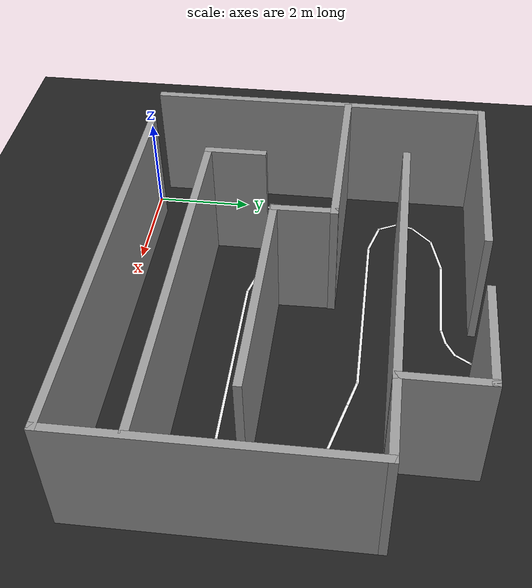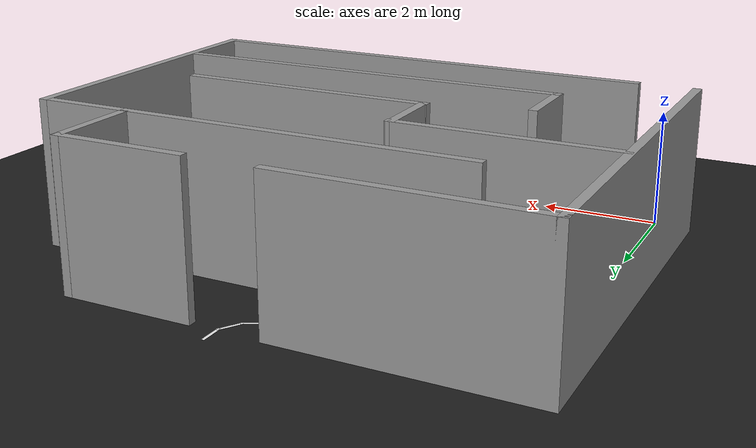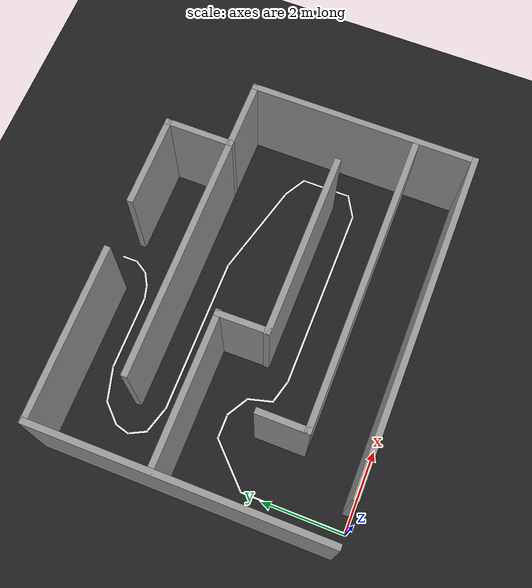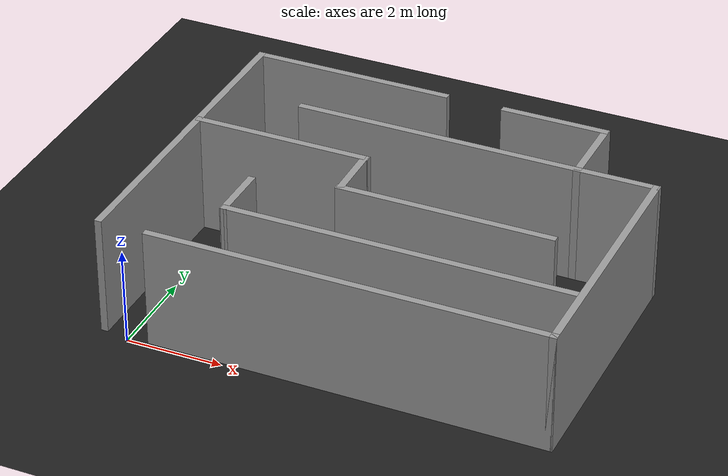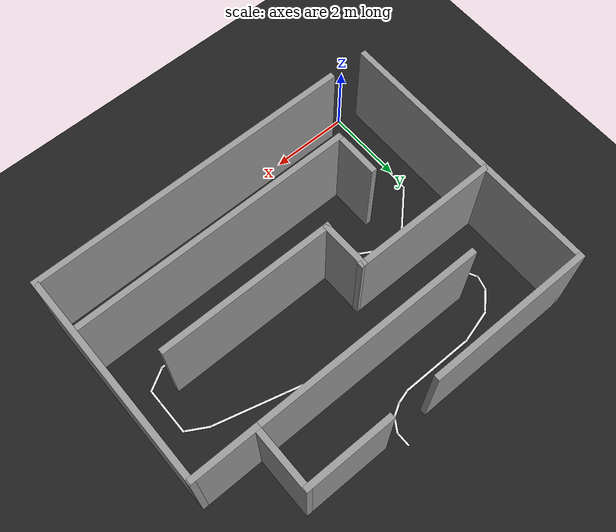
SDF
<sdf version="1.7">
 <world name="default">
  <light name="sun" type="directional">
   <pose>0 0 10 0 -0 0</pose>
   <diffuse>0.8 0.8 0.8 1</diffuse>
   <specular>0.2 0.2 0.2 1</specular>
   <attenuation>
    <range>1000</range>
    <constant>0.9</constant>
    <linear>0.01</linear>
    <quadratic>0.001</quadratic>
   </attenuation>
   <direction>-0.5 0.1 -0.9</direction>
   <spot><inner_angle>0</inner_angle><outer_angle>0</outer_angle><falloff>0</falloff></spot>
  </light>
  <model name="ground_plane">
   <static>1</static>
   <link name="link">
    <collision name="collision">
     <geometry><plane><normal>0 0 1</normal><size>100 100</size></plane></geometry>
     <surface>
      <contact><collide_bitmask>65535</collide_bitmask></contact>
      <friction><ode><mu>100</mu><mu2>50</mu2></ode></friction>
     </surface>
    </collision>
    <visual name="visual">
     <cast_shadows>0</cast_shadows>
     <geometry><plane><normal>0 0 1</normal><size>100 100</size></plane></geometry>
     <material>
      <script><uri>file://media/materials/scripts/gazebo.material</uri><name>Gazebo/Black</name></script>
     </material>
    </visual>
   </link>
  </model>
  <gravity>0 0 -9.8</gravity>
  <magnetic_field>6e-06 2.3e-05 -4.2e-05</magnetic_field>
  <atmosphere type="adiabatic"/>
  <physics type="ode">
   <max_step_size>0.001</max_step_size>
   <real_time_factor>1</real_time_factor>
   <real_time_update_rate>1000</real_time_update_rate>
  </physics>
  <scene><ambient>0.4 0.4 0.4 1</ambient><background>0 0 0 1</background><shadows>1</shadows></scene>
  <spherical_coordinates>
   <surface_model>EARTH_WGS84</surface_model>
   <latitude_deg>0</latitude_deg>
   <longitude_deg>0</longitude_deg>
   <elevation>0</elevation>
   <heading_deg>0</heading_deg>
  </spherical_coordinates>
  <model name="maze">
   <pose>4.01868 3.58658 0 0 -0 0</pose>
   <link name="Wall_1">
    <collision name="Wall_1_Collision">
     <geometry><box><size>8.25 0.15 2.5</size></box></geometry>
     <pose>0 0 1.25 0 -0 0</pose>
    </collision>
    <visual name="Wall_1_Visual">
     <pose>0 0 1.25 0 -0 0</pose>
     <geometry><box><size>8.25 0.15 2.5</size></box></geometry>
     <material>
      <script><uri>file://media/materials/scripts/gazebo.material</uri><name>Gazebo/Grey</name></script>
      <ambient>1 1 1 1</ambient>
     </material>
     <meta><layer>0</layer></meta>
    </visual>
    <pose>0.515408 -3.4419 0 0 -0 0</pose>
   </link>
   <link name="Wall_2">
    <collision name="Wall_2_Collision">
     <geometry><box><size>5.5 0.15 2.5</size></box></geometry>
     <pose>0 0 1.25 0 -0 0</pose>
    </collision>
    <visual name="Wall_2_Visual">
     <pose>0 0 1.25 0 -0 0</pose>
     <geometry><box><size>5.5 0.15 2.5</size></box></geometry>
     <material>
      <script><uri>file://media/materials/scripts/gazebo.material</uri><name>Gazebo/Grey</name></script>
      <ambient>1 1 1 1</ambient>
     </material>
     <meta><layer>0</layer></meta>
    </visual>
    <pose>4.56541 -0.766899 0 0 -0 1.5708</pose>
   </link>
   <link name="Wall_3">
    <collision name="Wall_3_Collision">
     <geometry><box><size>1.75 0.15 2.5</size></box></geometry>
     <pose>0 0 1.25 0 -0 0</pose>
    </collision>
    <visual name="Wall_3_Visual">
     <pose>0 0 1.25 0 -0 0</pose>
     <geometry><box><size>1.75 0.15 2.5</size></box></geometry>
     <material>
      <script><uri>file://media/materials/scripts/gazebo.material</uri><name>Gazebo/Grey</name></script>
      <ambient>1 1 1 1</ambient>
     </material>
     <meta><layer>0</layer></meta>
    </visual>
    <pose>3.76541 1.9081 0 0 -0 3.14159</pose>
   </link>
   <link name="Wall_4">
    <collision name="Wall_4_Collision">
     <geometry><box><size>1.6825 0.15 2.5</size></box></geometry>
     <pose>0 0 1.25 0 -0 0</pose>
    </collision>
    <visual name="Wall_4_Visual">
     <pose>0 0 1.25 0 -0 0</pose>
     <geometry><box><size>1.6825 0.15 2.5</size></box></geometry>
     <material>
      <script><uri>file://media/materials/scripts/gazebo.material</uri><name>Gazebo/Grey</name></script>
      <ambient>1 1 1 1</ambient>
     </material>
     <meta><layer>0</layer></meta>
    </visual>
    <pose>2.96541 2.6743 0 0 -0 1.5708</pose>
   </link>
   <link name="Wall_5">
    <collision name="Wall_5_Collision">
     <geometry><box><size>2.25 0.15 2.5</size></box></geometry>
     <pose>0 0 1.25 0 -0 0</pose>
    </collision>
    <visual name="Wall_5_Visual">
     <pose>0 0 1.25 0 -0 0</pose>
     <geometry><box><size>2.25 0.15 2.5</size></box></geometry>
     <material>
      <script><uri>file://media/materials/scripts/gazebo.material</uri><name>Gazebo/Grey</name></script>
      <ambient>1 1 1 1</ambient>
     </material>
     <meta><layer>0</layer></meta>
    </visual>
    <pose>1.89851 3.44051 0 0 -0 3.14159</pose>
   </link>
   <link name="Wall_6">
    <collision name="Wall_6_Collision">
     <geometry><box><size>7 0.15 2.5</size></box></geometry>
     <pose>0 0 1.25 0 -0 0</pose>
    </collision>
    <visual name="Wall_6_Visual">
     <pose>0 0 1.25 0 -0 0</pose>
     <geometry><box><size>7 0.15 2.5</size></box></geometry>
     <material>
      <script><uri>file://media/materials/scripts/gazebo.material</uri><name>Gazebo/Grey</name></script>
      <ambient>1 1 1 1</ambient>
     </material>
     <meta><layer>0</layer></meta>
    </visual>
    <pose>-4.56541 0.016899 0 0 -0 1.5708</pose>
   </link>
   <link name="Wall_7">
    <collision name="Wall_7_Collision">
     <geometry><box><size>4.25 0.15 2.5</size></box></geometry>
     <pose>0 0 1.25 0 -0 0</pose>
    </collision>
    <visual name="Wall_7_Visual">
     <pose>0 0 1.25 0 -0 0</pose>
     <geometry><box><size>4.25 0.15 2.5</size></box></geometry>
     <material>
      <script><uri>file://media/materials/scripts/gazebo.material</uri><name>Gazebo/Grey</name></script>
      <ambient>1 1 1 1</ambient>
     </material>
     <meta><layer>0</layer></meta>
    </visual>
    <pose>-2.51541 3.4419 0 0 -0 0</pose>
   </link>
   <link name="Wall_8">
    <collision name="Wall_8_Collision">
     <geometry><box><size>6 0.15 2.5</size></box></geometry>
     <pose>0 0 1.25 0 -0 0</pose>
    </collision>
    <visual name="Wall_8_Visual">
     <pose>0 0 1.25 0 -0 0</pose>
     <geometry><box><size>6 0.15 2.5</size></box></geometry>
     <material>
      <script><uri>file://media/materials/scripts/gazebo.material</uri><name>Gazebo/Grey</name></script>
      <ambient>1 1 1 1</ambient>
     </material>
     <meta><layer>0</layer></meta>
    </visual>
    <pose>0.040408 1.9081 0 0 -0 3.14159</pose>
   </link>
   <link name="Wall_9">
    <collision name="Wall_9_Collision">
     <geometry><box><size>3.75 0.15 2.5</size></box></geometry>
     <pose>0 0 1.25 0 -0 0</pose>
    </collision>
    <visual name="Wall_9_Visual">
     <pose>0 0 1.25 0 -0 0</pose>
     <geometry><box><size>3.75 0.15 2.5</size></box></geometry>
     <material>
      <script><uri>file://media/materials/scripts/gazebo.material</uri><name>Gazebo/Grey</name></script>
      <ambient>1 1 1 1</ambient>
     </material>
     <meta><layer>0</layer></meta>
    </visual>
    <pose>-2.73161 0.613768 0 0 -0 0</pose>
   </link>
   <link name="Wall_10">
    <collision name="Wall_10_Collision">
     <geometry><box><size>1.28044 0.15 2.5</size></box></geometry>
     <pose>0 0 1.25 0 -0 0</pose>
    </collision>
    <visual name="Wall_10_Visual">
     <pose>0 0 1.25 0 -0 0</pose>
     <geometry><box><size>1.28044 0.15 2.5</size></box></geometry>
     <material>
      <script><uri>file://media/materials/scripts/gazebo.material</uri><name>Gazebo/Grey</name></script>
      <ambient>1 1 1 1</ambient>
     </material>
     <meta><layer>0</layer></meta>
    </visual>
    <pose>-0.94006 0.048609 0 0 -0 -1.55585</pose>
   </link>
   <link name="Wall_11">
    <collision name="Wall_11_Collision">
     <geometry><box><size>4.5 0.15 2.5</size></box></geometry>
     <pose>0 0 1.25 0 -0 0</pose>
    </collision>
    <visual name="Wall_11_Visual">
     <pose>0 0 1.25 0 -0 0</pose>
     <geometry><box><size>4.5 0.15 2.5</size></box></geometry>
     <material>
      <script><uri>file://media/materials/scripts/gazebo.material</uri><name>Gazebo/Grey</name></script>
      <ambient>1 1 1 1</ambient>
     </material>
     <meta><layer>0</layer></meta>
    </visual>
    <pose>1.22649 -0.533449 0 0 -0 0</pose>
   </link>
   <link name="Wall_12">
    <collision name="Wall_12_Collision">
     <geometry><box><size>7.23312 0.15 2.5</size></box></geometry>
     <pose>0 0 1.25 0 -0 0</pose>
    </collision>
    <visual name="Wall_12_Visual">
     <pose>0 0 1.25 0 -0 0</pose>
     <geometry><box><size>7.23312 0.15 2.5</size></box></geometry>
     <material>
      <script><uri>file://media/materials/scripts/gazebo.material</uri><name>Gazebo/Grey</name></script>
      <ambient>1 1 1 1</ambient>
     </material>
     <meta><layer>0</layer></meta>
    </visual>
    <pose>0.933799 -2.06466 0 0 -0 -3.13921</pose>
   </link>
   <link name="Wall_13">
    <collision name="Wall_13_Collision">
     <geometry><box><size>1.25 0.15 2.5</size></box></geometry>
     <pose>0 0 1.25 0 -0 0</pose>
    </collision>
    <visual name="Wall_13_Visual">
     <pose>0 0 1.25 0 -0 0</pose>
     <geometry><box><size>1.25 0.15 2.5</size></box></geometry>
     <material>
      <script><uri>file://media/materials/scripts/gazebo.material</uri><name>Gazebo/Grey</name></script>
      <ambient>1 1 1 1</ambient>
     </material>
     <meta><layer>0</layer></meta>
    </visual>
    <pose>-2.62465 -1.52311 0 0 -0 1.5708</pose>
   </link>
   <static>1</static>
  </model>
  <model name="path">
   <pose>4.00109 3.7121 0 0 -0 0</pose>
   <link name="Line_11">
    <collision name="Line_11_Collision">
     <geometry><plane><normal>0 0 1</normal><size>0.05 2.5</size></plane></geometry>
     <pose>0 0 0.0015 0 -0 0</pose>
     <surface><friction><ode><mu>100</mu><mu2>50</mu2></ode></friction></surface>
    </collision>
    <visual name="Line_11_Visual">
     <pose>0 0 0.0015 0 -0 0</pose>
     <geometry><box><size>2.5 0.05 0.001</size></box></geometry>
     <material>
      <script><uri>file://media/materials/scripts/gazebo.material</uri><name>Gazebo/White</name></script>
     </material>
     <meta><layer>0</layer></meta>
    </visual>
    <pose>-3.96386 -2.42451 0 0 -0 -1.5708</pose>
   </link>
   <link name="Line_13">
    <collision name="Line_13_Collision">
     <geometry><plane><normal>0 0 1</normal><size>0.05 1.40411</size></plane></geometry>
     <pose>0 0 0.0005 0 -0 0</pose>
     <surface><friction><ode><mu>100</mu><mu2>50</mu2></ode></friction></surface>
    </collision>
    <visual name="Line_13_Visual">
     <pose>0 0 0.0005 0 -0 0</pose>
     <geometry><box><size>1.40411 0.05 0.001</size></box></geometry>
     <material>
      <script><uri>file://media/materials/scripts/gazebo.material</uri><name>Gazebo/White</name></script>
     </material>
     <meta><layer>0</layer></meta>
    </visual>
    <pose>-3.48386 -0.722009 0 0 -0 0.782787</pose>
   </link>
   <link name="Line_14">
    <collision name="Line_14_Collision">
     <geometry><plane><normal>0 0 1</normal><size>0.05 0.65</size></plane></geometry>
     <pose>0 0 0.0005 0 -0 0</pose>
     <surface><friction><ode><mu>100</mu><mu2>50</mu2></ode></friction></surface>
    </collision>
    <visual name="Line_14_Visual">
     <pose>0 0 0.0005 0 -0 0</pose>
     <geometry><box><size>0.65 0.05 0.001</size></box></geometry>
     <material>
      <script><uri>file://media/materials/scripts/gazebo.material</uri><name>Gazebo/White</name></script>
     </material>
     <meta><layer>0</layer></meta>
    </visual>
    <pose>-2.70386 -0.244509 0 0 -0 0</pose>
   </link>
   <link name="Line_20">
    <collision name="Line_20_Collision">
     <geometry><plane><normal>0 0 1</normal><size>0.05 0.645529</size></plane></geometry>
     <pose>0 0 0.0005 0 -0 0</pose>
     <surface><friction><ode><mu>100</mu><mu2>50</mu2></ode></friction></surface>
    </collision>
    <visual name="Line_20_Visual">
     <pose>0 0 0.0005 0 -0 0</pose>
     <geometry><box><size>0.645529 0.05 0.001</size></box></geometry>
     <material>
      <script><uri>file://media/materials/scripts/gazebo.material</uri><name>Gazebo/White</name></script>
     </material>
     <meta><layer>0</layer></meta>
    </visual>
    <pose>-2.14686 -0.394509 0 0 -0 -0.528316</pose>
   </link>
   <link name="Line_21">
    <collision name="Line_21_Collision">
     <geometry><plane><normal>0 0 1</normal><size>0.05 0.650446</size></plane></geometry>
     <pose>0 0 0.0005 0 -0 0</pose>
     <surface><friction><ode><mu>100</mu><mu2>50</mu2></ode></friction></surface>
    </collision>
    <visual name="Line_21_Visual">
     <pose>0 0 0.0005 0 -0 0</pose>
     <geometry><box><size>0.650446 0.05 0.001</size></box></geometry>
     <material>
      <script><uri>file://media/materials/scripts/gazebo.material</uri><name>Gazebo/White</name></script>
     </material>
     <meta><layer>0</layer></meta>
    </visual>
    <pose>-1.81186 -0.834509 0 0 -0 -1.30805</pose>
   </link>
   <link name="Line_22">
    <collision name="Line_22_Collision">
     <geometry><plane><normal>0 0 1</normal><size>0.05 0.649508</size></plane></geometry>
     <pose>0 0 0.0005 0 -0 0</pose>
     <surface><friction><ode><mu>100</mu><mu2>50</mu2></ode></friction></surface>
    </collision>
    <visual name="Line_22_Visual">
     <pose>0 0 0.0005 0 -0 0</pose>
     <geometry><box><size>0.649508 0.05 0.001</size></box></geometry>
     <material>
      <script><uri>file://media/materials/scripts/gazebo.material</uri><name>Gazebo/White</name></script>
     </material>
     <meta><layer>0</layer></meta>
    </visual>
    <pose>-1.44436 -1.20201 0 0 -0 -0.26157</pose>
   </link>
   <link name="Line_23">
    <collision name="Line_23_Collision">
     <geometry><plane><normal>0 0 1</normal><size>0.05 4.65006</size></plane></geometry>
     <pose>0 0 0.0005 0 -0 0</pose>
     <surface><friction><ode><mu>100</mu><mu2>50</mu2></ode></friction></surface>
    </collision>
    <visual name="Line_23_Visual">
     <pose>0 0 0.0005 0 -0 0</pose>
     <geometry><box><size>4.65006 0.05 0.001</size></box></geometry>
     <material>
      <script><uri>file://media/materials/scripts/gazebo.material</uri><name>Gazebo/White</name></script>
     </material>
     <meta><layer>0</layer></meta>
    </visual>
    <pose>1.14514 -1.27951 0 0 -0 0</pose>
   </link>
   <link name="Line_24">
    <collision name="Line_24_Collision">
     <geometry><plane><normal>0 0 1</normal><size>0.05 0.649922</size></plane></geometry>
     <pose>0 0 0.0005 0 -0 0</pose>
     <surface><friction><ode><mu>100</mu><mu2>50</mu2></ode></friction></surface>
    </collision>
    <visual name="Line_24_Visual">
     <pose>0 0 0.0005 0 -0 0</pose>
     <geometry><box><size>0.649922 0.05 0.001</size></box></geometry>
     <material>
      <script><uri>file://media/materials/scripts/gazebo.material</uri><name>Gazebo/White</name></script>
     </material>
     <meta><layer>0</layer></meta>
    </visual>
    <pose>3.70514 -1.12951 0 0 -0 0.523278</pose>
   </link>
   <link name="Line_25">
    <collision name="Line_25_Collision">
     <geometry><plane><normal>0 0 1</normal><size>0.05 0.399747</size></plane></geometry>
     <pose>0 0 0.0005 0 -0 0</pose>
     <surface><friction><ode><mu>100</mu><mu2>50</mu2></ode></friction></surface>
    </collision>
    <visual name="Line_25_Visual">
     <pose>0 0 0.0005 0 -0 0</pose>
     <geometry><box><size>0.399747 0.05 0.001</size></box></geometry>
     <material>
      <script><uri>file://media/materials/scripts/gazebo.material</uri><name>Gazebo/White</name></script>
     </material>
     <meta><layer>0</layer></meta>
    </visual>
    <pose>3.96514 -0.804509 0 0 -0 1.5708</pose>
   </link>
   <link name="Line_26">
    <collision name="Line_26_Collision">
     <geometry><plane><normal>0 0 1</normal><size>0.05 0.899747</size></plane></geometry>
     <pose>0 0 0.0005 0 -0 0</pose>
     <surface><friction><ode><mu>100</mu><mu2>50</mu2></ode></friction></surface>
    </collision>
    <visual name="Line_26_Visual">
     <pose>0 0 0.0005 0 -0 0</pose>
     <geometry><box><size>0.899747 0.05 0.001</size></box></geometry>
     <material>
      <script><uri>file://media/materials/scripts/gazebo.material</uri><name>Gazebo/White</name></script>
     </material>
     <meta><layer>0</layer></meta>
    </visual>
    <pose>3.96514 -0.204509 0 0 -0 1.5708</pose>
   </link>
   <link name="Line_27">
    <collision name="Line_27_Collision">
     <geometry><plane><normal>0 0 1</normal><size>0.05 0.650158</size></plane></geometry>
     <pose>0 0 0.0005 0 -0 0</pose>
     <surface><friction><ode><mu>100</mu><mu2>50</mu2></ode></friction></surface>
    </collision>
    <visual name="Line_27_Visual">
     <pose>0 0 0.0005 0 -0 0</pose>
     <geometry><box><size>0.650158 0.05 0.001</size></box></geometry>
     <material>
      <script><uri>file://media/materials/scripts/gazebo.material</uri><name>Gazebo/White</name></script>
     </material>
     <meta><layer>0</layer></meta>
    </visual>
    <pose>3.70514 0.370491 0 0 -0 2.61831</pose>
   </link>
   <link name="Line_28">
    <collision name="Line_28_Collision">
     <geometry><plane><normal>0 0 1</normal><size>0.05 1.89988</size></plane></geometry>
     <pose>0 0 0.0005 0 -0 0</pose>
     <surface><friction><ode><mu>100</mu><mu2>50</mu2></ode></friction></surface>
    </collision>
    <visual name="Line_28_Visual">
     <pose>0 0 0.0005 0 -0 0</pose>
     <geometry><box><size>1.89988 0.05 0.001</size></box></geometry>
     <material>
      <script><uri>file://media/materials/scripts/gazebo.material</uri><name>Gazebo/White</name></script>
     </material>
     <meta><layer>0</layer></meta>
    </visual>
    <pose>2.55164 0.759991 0 0 -0 2.8797</pose>
   </link>
   <link name="Line_29">
    <collision name="Line_29_Collision">
     <geometry><plane><normal>0 0 1</normal><size>0.05 0.649797</size></plane></geometry>
     <pose>0 0 0.0005 0 -0 0</pose>
     <surface><friction><ode><mu>100</mu><mu2>50</mu2></ode></friction></surface>
    </collision>
    <visual name="Line_29_Visual">
     <pose>0 0 0.0005 0 -0 0</pose>
     <geometry><box><size>0.649797 0.05 0.001</size></box></geometry>
     <material>
      <script><uri>file://media/materials/scripts/gazebo.material</uri><name>Gazebo/White</name></script>
     </material>
     <meta><layer>0</layer></meta>
    </visual>
    <pose>1.36864 1.07699 0 0 -0 2.88002</pose>
   </link>
   <link name="Line_30">
    <collision name="Line_30_Collision">
     <geometry><plane><normal>0 0 1</normal><size>0.05 3.92046</size></plane></geometry>
     <pose>0 0 0.0005 0 -0 0</pose>
     <surface><friction><ode><mu>100</mu><mu2>50</mu2></ode></friction></surface>
    </collision>
    <visual name="Line_30_Visual">
     <pose>0 0 0.0005 0 -0 0</pose>
     <geometry><box><size>3.92046 0.05 0.001</size></box></geometry>
     <material>
      <script><uri>file://media/materials/scripts/gazebo.material</uri><name>Gazebo/White</name></script>
     </material>
     <meta><layer>0</layer></meta>
    </visual>
    <pose>-0.855858 1.15449 0 0 -0 3.14159</pose>
   </link>
   <link name="Line_31">
    <collision name="Line_31_Collision">
     <geometry><plane><normal>0 0 1</normal><size>0.05 0.747857</size></plane></geometry>
     <pose>0 0 0.0005 0 -0 0</pose>
     <surface><friction><ode><mu>100</mu><mu2>50</mu2></ode></friction></surface>
    </collision>
    <visual name="Line_31_Visual">
     <pose>0 0 0.0005 0 -0 0</pose>
     <geometry><box><size>0.747857 0.05 0.001</size></box></geometry>
     <material>
      <script><uri>file://media/materials/scripts/gazebo.material</uri><name>Gazebo/White</name></script>
     </material>
     <meta><layer>0</layer></meta>
    </visual>
    <pose>-3.12586 1.25199 0 0 -0 2.85837</pose>
   </link>
   <link name="Line_32">
    <collision name="Line_32_Collision">
     <geometry><plane><normal>0 0 1</normal><size>0.05 0.489276</size></plane></geometry>
     <pose>0 0 0.0005 0 -0 0</pose>
     <surface><friction><ode><mu>100</mu><mu2>50</mu2></ode></friction></surface>
    </collision>
    <visual name="Line_32_Visual">
     <pose>0 0 0.0005 0 -0 0</pose>
     <geometry><box><size>0.489276 0.05 0.001</size></box></geometry>
     <material>
      <script><uri>file://media/materials/scripts/gazebo.material</uri><name>Gazebo/White</name></script>
     </material>
     <meta><layer>0</layer></meta>
    </visual>
    <pose>-3.55986 1.54549 0 0 -0 2.03852</pose>
   </link>
   <link name="Line_35">
    <collision name="Line_35_Collision">
     <geometry><plane><normal>0 0 1</normal><size>0.05 0.400442</size></plane></geometry>
     <pose>0 0 0.0005 0 -0 0</pose>
     <surface><friction><ode><mu>100</mu><mu2>50</mu2></ode></friction></surface>
    </collision>
    <visual name="Line_35_Visual">
     <pose>0 0 0.0005 0 -0 0</pose>
     <geometry><box><size>0.400442 0.05 0.001</size></box></geometry>
     <material>
      <script><uri>file://media/materials/scripts/gazebo.material</uri><name>Gazebo/White</name></script>
     </material>
     <meta><layer>0</layer></meta>
    </visual>
    <pose>-3.61336 1.91049 0 0 -0 1.3078</pose>
   </link>
   <link name="Line_36">
    <collision name="Line_36_Collision">
     <geometry><plane><normal>0 0 1</normal><size>0.05 0.650309</size></plane></geometry>
     <pose>0 0 0.0005 0 -0 0</pose>
     <surface><friction><ode><mu>100</mu><mu2>50</mu2></ode></friction></surface>
    </collision>
    <visual name="Line_36_Visual">
     <pose>0 0 0.0005 0 -0 0</pose>
     <geometry><box><size>0.650309 0.05 0.001</size></box></geometry>
     <material>
      <script><uri>file://media/materials/scripts/gazebo.material</uri><name>Gazebo/White</name></script>
     </material>
     <meta><layer>0</layer></meta>
    </visual>
    <pose>-3.35586 2.29199 0 0 -0 0.786576</pose>
   </link>
   <link name="Line_37">
    <collision name="Line_37_Collision">
     <geometry><plane><normal>0 0 1</normal><size>0.05 0.900194</size></plane></geometry>
     <pose>0 0 0.0005 0 -0 0</pose>
     <surface><friction><ode><mu>100</mu><mu2>50</mu2></ode></friction></surface>
    </collision>
    <visual name="Line_37_Visual">
     <pose>0 0 0.0005 0 -0 0</pose>
     <geometry><box><size>0.900194 0.05 0.001</size></box></geometry>
     <material>
      <script><uri>file://media/materials/scripts/gazebo.material</uri><name>Gazebo/White</name></script>
     </material>
     <meta><layer>0</layer></meta>
    </visual>
    <pose>-2.73336 2.61449 0 0 -0 0.261815</pose>
   </link>
   <link name="Line_38">
    <collision name="Line_38_Collision">
     <geometry><plane><normal>0 0 1</normal><size>0.05 1.90032</size></plane></geometry>
     <pose>0 0 0.0005 0 -0 0</pose>
     <surface><friction><ode><mu>100</mu><mu2>50</mu2></ode></friction></surface>
    </collision>
    <visual name="Line_38_Visual">
     <pose>0 0 0.0005 0 -0 0</pose>
     <geometry><box><size>1.90032 0.05 0.001</size></box></geometry>
     <material>
      <script><uri>file://media/materials/scripts/gazebo.material</uri><name>Gazebo/White</name></script>
     </material>
     <meta><layer>0</layer></meta>
    </visual>
    <pose>-1.39786 2.72449 0 0 -0 0</pose>
   </link>
   <link name="Line_39">
    <collision name="Line_39_Collision">
     <geometry><plane><normal>0 0 1</normal><size>0.05 0.400228</size></plane></geometry>
     <pose>0 0 0.0005 0 -0 0</pose>
     <surface><friction><ode><mu>100</mu><mu2>50</mu2></ode></friction></surface>
    </collision>
    <visual name="Line_39_Visual">
     <pose>0 0 0.0005 0 -0 0</pose>
     <geometry><box><size>0.400228 0.05 0.001</size></box></geometry>
     <material>
      <script><uri>file://media/materials/scripts/gazebo.material</uri><name>Gazebo/White</name></script>
     </material>
     <meta><layer>0</layer></meta>
    </visual>
    <pose>-0.303858 2.76949 0 0 -0 0.260234</pose>
   </link>
   <link name="Line_40">
    <collision name="Line_40_Collision">
     <geometry><plane><normal>0 0 1</normal><size>0.05 0.400475</size></plane></geometry>
     <pose>0 0 0.0005 0 -0 0</pose>
     <surface><friction><ode><mu>100</mu><mu2>50</mu2></ode></friction></surface>
    </collision>
    <visual name="Line_40_Visual">
     <pose>0 0 0.0005 0 -0 0</pose>
     <geometry><box><size>0.400475 0.05 0.001</size></box></geometry>
     <material>
      <script><uri>file://media/materials/scripts/gazebo.material</uri><name>Gazebo/White</name></script>
     </material>
     <meta><layer>0</layer></meta>
    </visual>
    <pose>0.017142 2.90199 0 0 -0 0.522329</pose>
   </link>
   <link name="Line_41">
    <collision name="Line_41_Collision">
     <geometry><plane><normal>0 0 1</normal><size>0.05 0.416231</size></plane></geometry>
     <pose>0 0 0.0005 0 -0 0</pose>
     <surface><friction><ode><mu>100</mu><mu2>50</mu2></ode></friction></surface>
    </collision>
    <visual name="Line_41_Visual">
     <pose>0 0 0.0005 0 -0 0</pose>
     <geometry><box><size>0.416231 0.05 0.001</size></box></geometry>
     <material>
      <script><uri>file://media/materials/scripts/gazebo.material</uri><name>Gazebo/White</name></script>
     </material>
     <meta><layer>0</layer></meta>
    </visual>
    <pose>0.266642 3.14449 0 0 -0 1.0093</pose>
   </link>
   <link name="Line_42">
    <collision name="Line_42_Collision">
     <geometry><plane><normal>0 0 1</normal><size>0.05 0.400038</size></plane></geometry>
     <pose>0 0 0.0005 0 -0 0</pose>
     <surface><friction><ode><mu>100</mu><mu2>50</mu2></ode></friction></surface>
    </collision>
    <visual name="Line_42_Visual">
     <pose>0 0 0.0005 0 -0 0</pose>
     <geometry><box><size>0.400038 0.05 0.001</size></box></geometry>
     <material>
      <script><uri>file://media/materials/scripts/gazebo.material</uri><name>Gazebo/White</name></script>
     </material>
     <meta><layer>0</layer></meta>
    </visual>
    <pose>0.364142 3.47449 0 0 -0 1.5708</pose>
   </link>
   <static>1</static>
  </model>
 </world>
</sdf>
